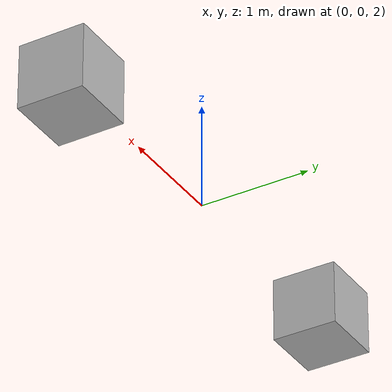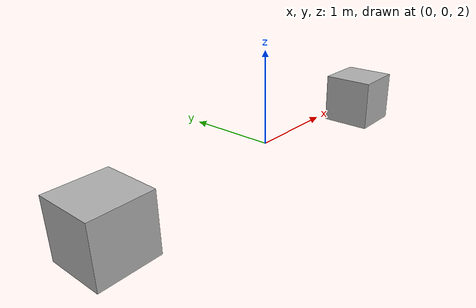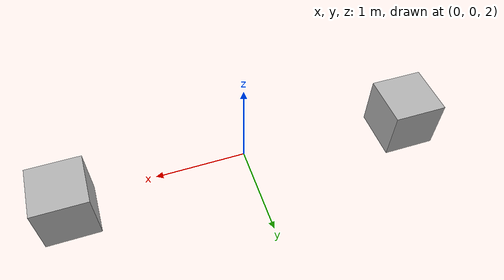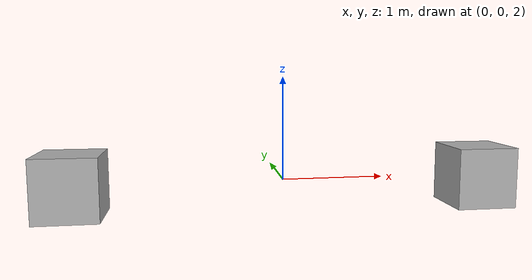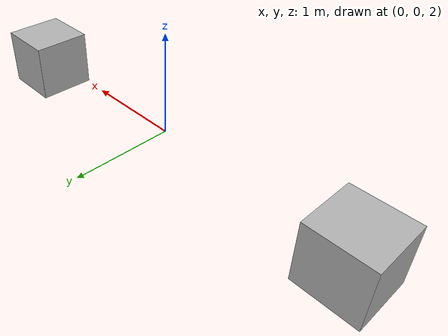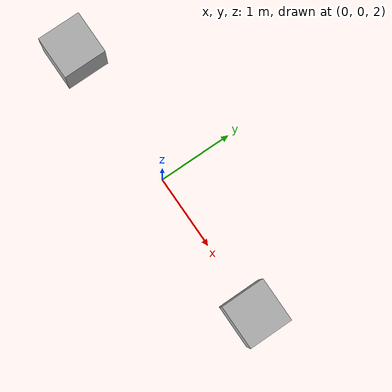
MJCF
<mujoco>
  <option gravity="0 0 -9.81" />
  <worldbody>
    <light diffuse="0.5 0.5 0.5" pos="0 0 5" dir="0 0 -1" />
    <body name="ground" pos="0 0 -10">
      <geom type="plane" size="50 50 0.1" rgba="0.7 0.7 0.7 1" />
    </body>
    <body name="spring_block_1" pos="-2 0 2">
      <geom type="box" size="0.3 0.3 0.3" mass="2" rgba="0.7 0.7 0.7 1" />
      <joint type="slide" axis="0 0 1" limited="true" range="0 5" />
    </body>
    <body name="spring_block_2" pos="2 0 2">
      <geom type="box" size="0.3 0.3 0.3" mass="4" rgba="0.7 0.7 0.7 1" />
      <joint type="slide" axis="0 0 1" limited="true" range="0 5" />
    </body>
  </worldbody>
</mujoco>
